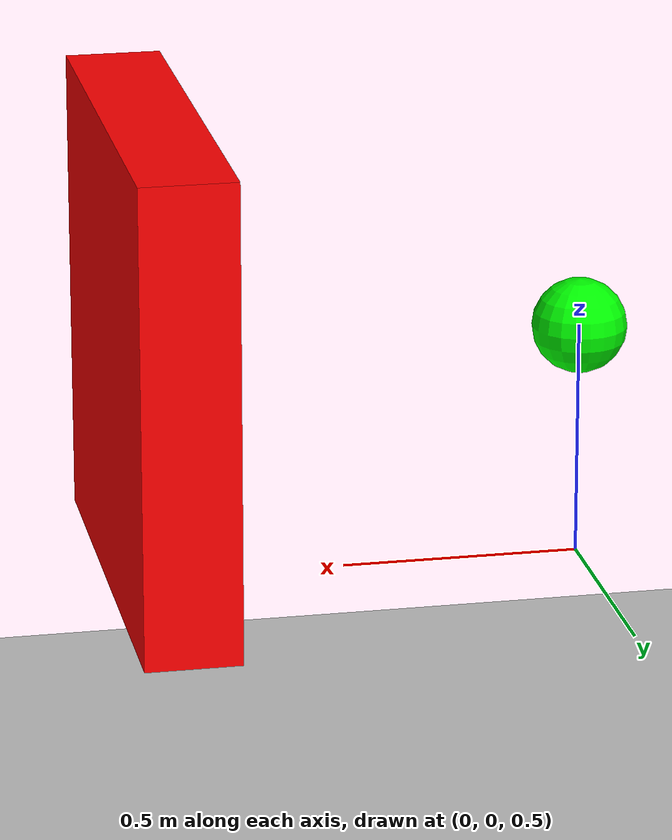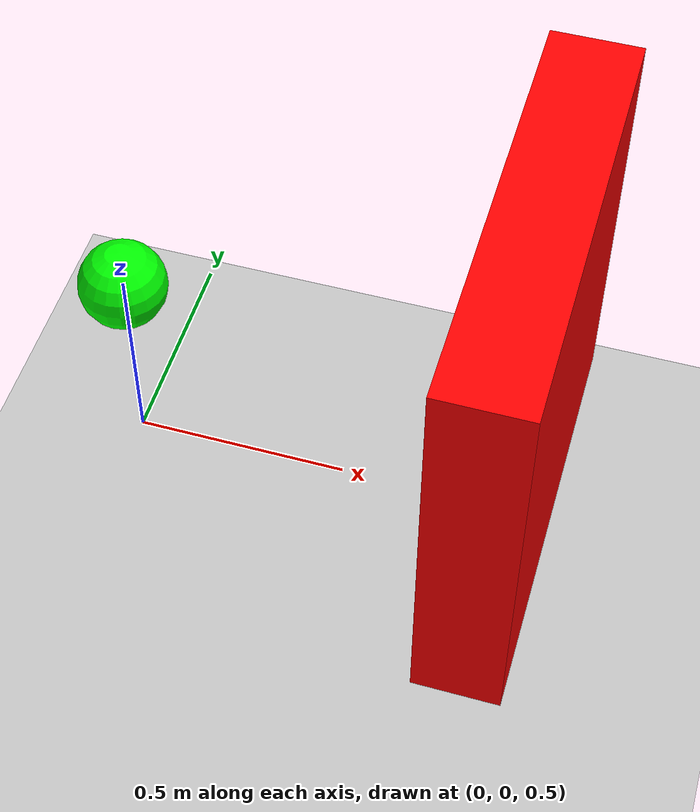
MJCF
<mujoco model="Ball sliding along x-axis">
  <worldbody>
    <light diffuse=".5 .5 .5" pos="0 0 3" dir="0 0 -1"/>
    <geom type="plane" size="2 2 0.1" rgba=".75 .75 .75 1"/>

    <body name="ball" pos="0 0 1">
      <joint name="ball_slide_x" type="slide" axis="1 0 0" range="-1 1"/>
      <geom type="sphere" size="0.1" rgba="0 1 0 1"/>
    </body>

    <!-- Obstacle that lies from x = 0.8 .. 1 -->
    <geom name="wall_obstacle" type="box" pos="0.9 0 1" size="0.1 0.5 0.5" rgba="1 0 0 1"/>
  </worldbody>
</mujoco>
